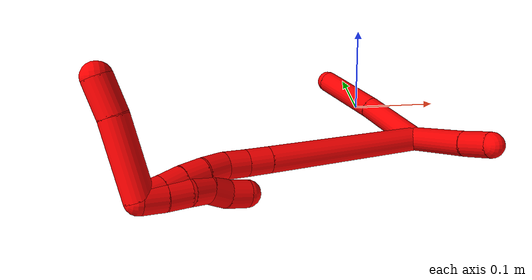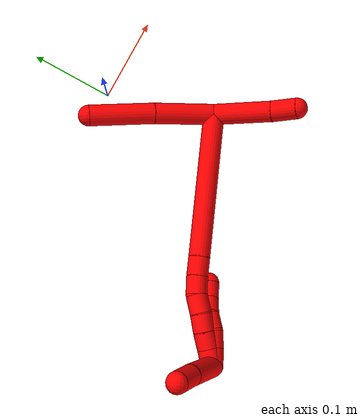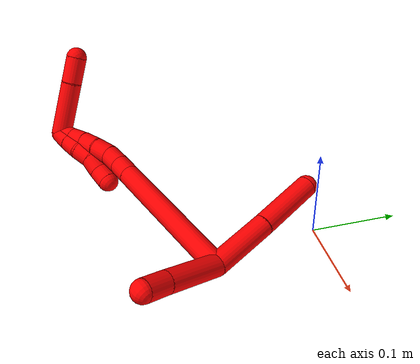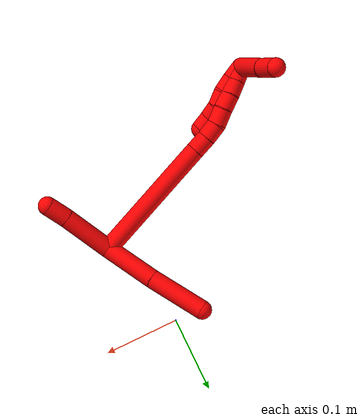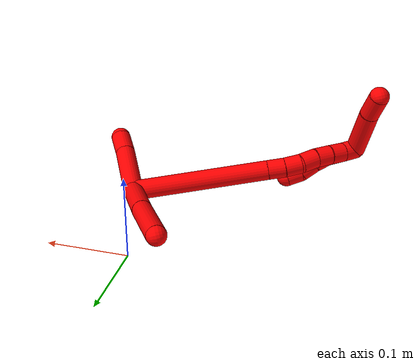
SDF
<sdf version="1.7">
 <world name="default">
  <model name="2">
   <static>0</static>
   <link name="2">
    <collision name="collision-cylinder-e_1_2_8">
     <pose>-0.002964 0.035927 0.003407 -1.47625 -0.081936 0.074541</pose>
     <geometry><cylinder><radius>0.0125</radius><length>0.072419</length></cylinder></geometry>
     <surface>
      <friction><ode><mu>1.16</mu><mu2>1.16</mu2><slip1>0</slip1><slip2>0</slip2></ode></friction>
      <contact><ode><kp>1e+06</kp><kd>1</kd><max_vel>0</max_vel><min_depth>0.001</min_depth></ode></contact>
     </surface>
    </collision>
    <visual name="visual-cylinder-e_1_2_8">
     <pose>-0.002964 0.035927 0.003407 -1.47625 -0.081936 0.074541</pose>
     <geometry><cylinder><radius>0.0125</radius><length>0.072419</length></cylinder></geometry>
     <material><ambient>1 0 0 1</ambient></material>
    </visual>
    <collision name="collision-cylinder-e_2_8_6">
     <pose>-0.010488 0.110012 0.012094 -1.43328 -0.117856 0.102698</pose>
     <geometry><cylinder><radius>0.0125</radius><length>0.077581</length></cylinder></geometry>
     <surface>
      <friction><ode><mu>1.16</mu><mu2>1.16</mu2><slip1>0</slip1><slip2>0</slip2></ode></friction>
      <contact><ode><kp>1e+06</kp><kd>1</kd><max_vel>0</max_vel><min_depth>0.001</min_depth></ode></contact>
     </surface>
    </collision>
    <visual name="visual-cylinder-e_2_8_6">
     <pose>-0.010488 0.110012 0.012094 -1.43328 -0.117856 0.102698</pose>
     <geometry><cylinder><radius>0.0125</radius><length>0.077581</length></cylinder></geometry>
     <material><ambient>1 0 0 1</ambient></material>
    </visual>
    <collision name="collision-cylinder-e_1_2_9">
     <pose>0.018253 -0.030108 0.000225 1.56334 0.545005 0.541151</pose>
     <geometry><cylinder><radius>0.0125</radius><length>0.070419</length></cylinder></geometry>
     <surface>
      <friction><ode><mu>1.16</mu><mu2>1.16</mu2><slip1>0</slip1><slip2>0</slip2></ode></friction>
      <contact><ode><kp>1e+06</kp><kd>1</kd><max_vel>0</max_vel><min_depth>0.001</min_depth></ode></contact>
     </surface>
    </collision>
    <visual name="visual-cylinder-e_1_2_9">
     <pose>0.018253 -0.030108 0.000225 1.56334 0.545005 0.541151</pose>
     <geometry><cylinder><radius>0.0125</radius><length>0.070419</length></cylinder></geometry>
     <material><ambient>1 0 0 1</ambient></material>
    </visual>
    <collision name="collision-cylinder-e_2_9_5">
     <pose>0.044632 -0.072556 -0.000222 1.62511 0.581573 0.612105</pose>
     <geometry><cylinder><radius>0.0125</radius><length>0.029581</length></cylinder></geometry>
     <surface>
      <friction><ode><mu>1.16</mu><mu2>1.16</mu2><slip1>0</slip1><slip2>0</slip2></ode></friction>
      <contact><ode><kp>1e+06</kp><kd>1</kd><max_vel>0</max_vel><min_depth>0.001</min_depth></ode></contact>
     </surface>
    </collision>
    <visual name="visual-cylinder-e_2_9_5">
     <pose>0.044632 -0.072556 -0.000222 1.62511 0.581573 0.612105</pose>
     <geometry><cylinder><radius>0.0125</radius><length>0.029581</length></cylinder></geometry>
     <material><ambient>1 0 0 1</ambient></material>
    </visual>
    <collision name="collision-cylinder-e_1_2_10">
     <pose>-0.007966 0.003082 0.08612 -0.035773 -0.092177 0.00165</pose>
     <geometry><cylinder><radius>0.0125</radius><length>0.173086</length></cylinder></geometry>
     <surface>
      <friction><ode><mu>1.16</mu><mu2>1.16</mu2><slip1>0</slip1><slip2>0</slip2></ode></friction>
      <contact><ode><kp>1e+06</kp><kd>1</kd><max_vel>0</max_vel><min_depth>0.001</min_depth></ode></contact>
     </surface>
    </collision>
    <visual name="visual-cylinder-e_1_2_10">
     <pose>-0.007966 0.003082 0.08612 -0.035773 -0.092177 0.00165</pose>
     <geometry><cylinder><radius>0.0125</radius><length>0.173086</length></cylinder></geometry>
     <material><ambient>1 0 0 1</ambient></material>
    </visual>
    <collision name="collision-cylinder-e_2_10_11">
     <pose>-0.016981 0.006641 0.183465 -0.042463 -0.093118 0.001979</pose>
     <geometry><cylinder><radius>0.0125</radius><length>0.022566</length></cylinder></geometry>
     <surface>
      <friction><ode><mu>1.16</mu><mu2>1.16</mu2><slip1>0</slip1><slip2>0</slip2></ode></friction>
      <contact><ode><kp>1e+06</kp><kd>1</kd><max_vel>0</max_vel><min_depth>0.001</min_depth></ode></contact>
     </surface>
    </collision>
    <visual name="visual-cylinder-e_2_10_11">
     <pose>-0.016981 0.006641 0.183465 -0.042463 -0.093118 0.001979</pose>
     <geometry><cylinder><radius>0.0125</radius><length>0.022566</length></cylinder></geometry>
     <material><ambient>1 0 0 1</ambient></material>
    </visual>
    <collision name="collision-cylinder-e_3_11_12">
     <pose>-0.018251 0.006941 0.205514 0.016369 -0.020416 -0.000167</pose>
     <geometry><cylinder><radius>0.0125</radius><length>0.021657</length></cylinder></geometry>
     <surface>
      <friction><ode><mu>1.16</mu><mu2>1.16</mu2><slip1>0</slip1><slip2>0</slip2></ode></friction>
      <contact><ode><kp>1e+06</kp><kd>1</kd><max_vel>0</max_vel><min_depth>0.001</min_depth></ode></contact>
     </surface>
    </collision>
    <visual name="visual-cylinder-e_3_11_12">
     <pose>-0.018251 0.006941 0.205514 0.016369 -0.020416 -0.000167</pose>
     <geometry><cylinder><radius>0.0125</radius><length>0.021657</length></cylinder></geometry>
     <material><ambient>1 0 0 1</ambient></material>
    </visual>
    <collision name="collision-cylinder-e_4_12_13">
     <pose>-0.018197 0.003791 0.226908 0.274165 0.025113 0.003464</pose>
     <geometry><cylinder><radius>0.0125</radius><length>0.021965</length></cylinder></geometry>
     <surface>
      <friction><ode><mu>1.16</mu><mu2>1.16</mu2><slip1>0</slip1><slip2>0</slip2></ode></friction>
      <contact><ode><kp>1e+06</kp><kd>1</kd><max_vel>0</max_vel><min_depth>0.001</min_depth></ode></contact>
     </surface>
    </collision>
    <visual name="visual-cylinder-e_4_12_13">
     <pose>-0.018197 0.003791 0.226908 0.274165 0.025113 0.003464</pose>
     <geometry><cylinder><radius>0.0125</radius><length>0.021965</length></cylinder></geometry>
     <material><ambient>1 0 0 1</ambient></material>
    </visual>
    <collision name="collision-cylinder-e_5_13_14">
     <pose>-0.018961 -0.001754 0.247442 0.252615 -0.100709 -0.012799</pose>
     <geometry><cylinder><radius>0.0125</radius><length>0.020689</length></cylinder></geometry>
     <surface>
      <friction><ode><mu>1.16</mu><mu2>1.16</mu2><slip1>0</slip1><slip2>0</slip2></ode></friction>
      <contact><ode><kp>1e+06</kp><kd>1</kd><max_vel>0</max_vel><min_depth>0.001</min_depth></ode></contact>
     </surface>
    </collision>
    <visual name="visual-cylinder-e_5_13_14">
     <pose>-0.018961 -0.001754 0.247442 0.252615 -0.100709 -0.012799</pose>
     <geometry><cylinder><radius>0.0125</radius><length>0.020689</length></cylinder></geometry>
     <material><ambient>1 0 0 1</ambient></material>
    </visual>
    <collision name="collision-cylinder-e_6_14_15">
     <pose>-0.02141 -0.007569 0.266764 0.333672 -0.141369 -0.023845</pose>
     <geometry><cylinder><radius>0.0125</radius><length>0.020005</length></cylinder></geometry>
     <surface>
      <friction><ode><mu>1.16</mu><mu2>1.16</mu2><slip1>0</slip1><slip2>0</slip2></ode></friction>
      <contact><ode><kp>1e+06</kp><kd>1</kd><max_vel>0</max_vel><min_depth>0.001</min_depth></ode></contact>
     </surface>
    </collision>
    <visual name="visual-cylinder-e_6_14_15">
     <pose>-0.02141 -0.007569 0.266764 0.333672 -0.141369 -0.023845</pose>
     <geometry><cylinder><radius>0.0125</radius><length>0.020005</length></cylinder></geometry>
     <material><ambient>1 0 0 1</ambient></material>
    </visual>
    <collision name="collision-cylinder-e_7_15_1">
     <pose>-0.023637 -0.013953 0.285596 0.320034 -0.081705 -0.013194</pose>
     <geometry><cylinder><radius>0.0125</radius><length>0.020032</length></cylinder></geometry>
     <surface>
      <friction><ode><mu>1.16</mu><mu2>1.16</mu2><slip1>0</slip1><slip2>0</slip2></ode></friction>
      <contact><ode><kp>1e+06</kp><kd>1</kd><max_vel>0</max_vel><min_depth>0.001</min_depth></ode></contact>
     </surface>
    </collision>
    <visual name="visual-cylinder-e_7_15_1">
     <pose>-0.023637 -0.013953 0.285596 0.320034 -0.081705 -0.013194</pose>
     <geometry><cylinder><radius>0.0125</radius><length>0.020032</length></cylinder></geometry>
     <material><ambient>1 0 0 1</ambient></material>
    </visual>
    <collision name="collision-cylinder-e_1_1_16">
     <pose>-0.024546 -0.016996 0.285073 -3.1318 -0.009174 1.50541</pose>
     <geometry><cylinder><radius>0.0125</radius><length>0.02</length></cylinder></geometry>
     <surface>
      <friction><ode><mu>1.16</mu><mu2>1.16</mu2><slip1>0</slip1><slip2>0</slip2></ode></friction>
      <contact><ode><kp>1e+06</kp><kd>1</kd><max_vel>0</max_vel><min_depth>0.001</min_depth></ode></contact>
     </surface>
    </collision>
    <visual name="visual-cylinder-e_1_1_16">
     <pose>-0.024546 -0.016996 0.285073 -3.1318 -0.009174 1.50541</pose>
     <geometry><cylinder><radius>0.0125</radius><length>0.02</length></cylinder></geometry>
     <material><ambient>1 0 0 1</ambient></material>
    </visual>
    <collision name="collision-cylinder-e_2_16_17">
     <pose>-0.024404 -0.016116 0.265107 -3.06332 0.023437 -0.581584</pose>
     <geometry><cylinder><radius>0.0125</radius><length>0.02</length></cylinder></geometry>
     <surface>
      <friction><ode><mu>1.16</mu><mu2>1.16</mu2><slip1>0</slip1><slip2>0</slip2></ode></friction>
      <contact><ode><kp>1e+06</kp><kd>1</kd><max_vel>0</max_vel><min_depth>0.001</min_depth></ode></contact>
     </surface>
    </collision>
    <visual name="visual-cylinder-e_2_16_17">
     <pose>-0.024404 -0.016116 0.265107 -3.06332 0.023437 -0.581584</pose>
     <geometry><cylinder><radius>0.0125</radius><length>0.02</length></cylinder></geometry>
     <material><ambient>1 0 0 1</ambient></material>
    </visual>
    <collision name="collision-cylinder-e_3_17_18">
     <pose>-0.025801 -0.013082 0.245535 -2.91129 -0.163908 1.23501</pose>
     <geometry><cylinder><radius>0.0125</radius><length>0.02</length></cylinder></geometry>
     <surface>
      <friction><ode><mu>1.16</mu><mu2>1.16</mu2><slip1>0</slip1><slip2>0</slip2></ode></friction>
      <contact><ode><kp>1e+06</kp><kd>1</kd><max_vel>0</max_vel><min_depth>0.001</min_depth></ode></contact>
     </surface>
    </collision>
    <visual name="visual-cylinder-e_3_17_18">
     <pose>-0.025801 -0.013082 0.245535 -2.91129 -0.163908 1.23501</pose>
     <geometry><cylinder><radius>0.0125</radius><length>0.02</length></cylinder></geometry>
     <material><ambient>1 0 0 1</ambient></material>
    </visual>
    <collision name="collision-cylinder-e_4_18_19">
     <pose>-0.031142 -0.011334 0.226656 3.08726 -0.379963 -2.86086</pose>
     <geometry><cylinder><radius>0.0125</radius><length>0.02</length></cylinder></geometry>
     <surface>
      <friction><ode><mu>1.16</mu><mu2>1.16</mu2><slip1>0</slip1><slip2>0</slip2></ode></friction>
      <contact><ode><kp>1e+06</kp><kd>1</kd><max_vel>0</max_vel><min_depth>0.001</min_depth></ode></contact>
     </surface>
    </collision>
    <visual name="visual-cylinder-e_4_18_19">
     <pose>-0.031142 -0.011334 0.226656 3.08726 -0.379963 -2.86086</pose>
     <geometry><cylinder><radius>0.0125</radius><length>0.02</length></cylinder></geometry>
     <material><ambient>1 0 0 1</ambient></material>
    </visual>
    <collision name="collision-cylinder-e_5_19_4">
     <pose>-0.035787 -0.012191 0.207433 3.1062 -0.093823 -2.42053</pose>
     <geometry><cylinder><radius>0.0125</radius><length>0.02</length></cylinder></geometry>
     <surface>
      <friction><ode><mu>1.16</mu><mu2>1.16</mu2><slip1>0</slip1><slip2>0</slip2></ode></friction>
      <contact><ode><kp>1e+06</kp><kd>1</kd><max_vel>0</max_vel><min_depth>0.001</min_depth></ode></contact>
     </surface>
    </collision>
    <visual name="visual-cylinder-e_5_19_4">
     <pose>-0.035787 -0.012191 0.207433 3.1062 -0.093823 -2.42053</pose>
     <geometry><cylinder><radius>0.0125</radius><length>0.02</length></cylinder></geometry>
     <material><ambient>1 0 0 1</ambient></material>
    </visual>
    <collision name="collision-cylinder-e_1_1_20">
     <pose>0.001366 0.002905 0.30343 -1.17495 0.872462 -0.602006</pose>
     <geometry><cylinder><radius>0.0125</radius><length>0.067425</length></cylinder></geometry>
     <surface>
      <friction><ode><mu>1.16</mu><mu2>1.16</mu2><slip1>0</slip1><slip2>0</slip2></ode></friction>
      <contact><ode><kp>1e+06</kp><kd>1</kd><max_vel>0</max_vel><min_depth>0.001</min_depth></ode></contact>
     </surface>
    </collision>
    <visual name="visual-cylinder-e_1_1_20">
     <pose>0.001366 0.002905 0.30343 -1.17495 0.872462 -0.602006</pose>
     <geometry><cylinder><radius>0.0125</radius><length>0.067425</length></cylinder></geometry>
     <material><ambient>1 0 0 1</ambient></material>
    </visual>
    <collision name="collision-cylinder-e_2_20_3">
     <pose>0.038761 0.033099 0.317023 -1.09635 0.790313 -0.49875</pose>
     <geometry><cylinder><radius>0.0125</radius><length>0.032575</length></cylinder></geometry>
     <surface>
      <friction><ode><mu>1.16</mu><mu2>1.16</mu2><slip1>0</slip1><slip2>0</slip2></ode></friction>
      <contact><ode><kp>1e+06</kp><kd>1</kd><max_vel>0</max_vel><min_depth>0.001</min_depth></ode></contact>
     </surface>
    </collision>
    <visual name="visual-cylinder-e_2_20_3">
     <pose>0.038761 0.033099 0.317023 -1.09635 0.790313 -0.49875</pose>
     <geometry><cylinder><radius>0.0125</radius><length>0.032575</length></cylinder></geometry>
     <material><ambient>1 0 0 1</ambient></material>
    </visual>
    <collision name="collision-sphere-3">
     <pose>0.050334 0.043293 0.322258 0 -0 0</pose>
     <geometry><sphere><radius>0.0125</radius></sphere></geometry>
     <surface>
      <friction><ode><mu>1.16</mu><mu2>1.16</mu2><slip1>0</slip1><slip2>0</slip2></ode></friction>
      <contact><ode><kp>1e+06</kp><kd>1</kd><max_vel>0</max_vel><min_depth>0.001</min_depth></ode></contact>
     </surface>
    </collision>
    <visual name="visual-sphere-3">
     <pose>0.050334 0.043293 0.322258 0 -0 0</pose>
     <geometry><sphere><radius>0.0125</radius></sphere></geometry>
     <material><ambient>1 0 0 1</ambient></material>
    </visual>
    <collision name="collision-sphere-20">
     <pose>0.027187 0.022905 0.311787 0 -0 0</pose>
     <geometry><sphere><radius>0.0125</radius></sphere></geometry>
     <surface>
      <friction><ode><mu>1.16</mu><mu2>1.16</mu2><slip1>0</slip1><slip2>0</slip2></ode></friction>
      <contact><ode><kp>1e+06</kp><kd>1</kd><max_vel>0</max_vel><min_depth>0.001</min_depth></ode></contact>
     </surface>
    </collision>
    <visual name="visual-sphere-20">
     <pose>0.027187 0.022905 0.311787 0 -0 0</pose>
     <geometry><sphere><radius>0.0125</radius></sphere></geometry>
     <material><ambient>1 0 0 1</ambient></material>
    </visual>
    <collision name="collision-sphere-4">
     <pose>-0.036724 -0.012543 0.197484 0 -0 0</pose>
     <geometry><sphere><radius>0.0125</radius></sphere></geometry>
     <surface>
      <friction><ode><mu>1.16</mu><mu2>1.16</mu2><slip1>0</slip1><slip2>0</slip2></ode></friction>
      <contact><ode><kp>1e+06</kp><kd>1</kd><max_vel>0</max_vel><min_depth>0.001</min_depth></ode></contact>
     </surface>
    </collision>
    <visual name="visual-sphere-4">
     <pose>-0.036724 -0.012543 0.197484 0 -0 0</pose>
     <geometry><sphere><radius>0.0125</radius></sphere></geometry>
     <material><ambient>1 0 0 1</ambient></material>
    </visual>
    <collision name="collision-sphere-10">
     <pose>-0.015932 0.006164 0.172241 0 -0 0</pose>
     <geometry><sphere><radius>0.0125</radius></sphere></geometry>
     <surface>
      <friction><ode><mu>1.16</mu><mu2>1.16</mu2><slip1>0</slip1><slip2>0</slip2></ode></friction>
      <contact><ode><kp>1e+06</kp><kd>1</kd><max_vel>0</max_vel><min_depth>0.001</min_depth></ode></contact>
     </surface>
    </collision>
    <visual name="visual-sphere-10">
     <pose>-0.015932 0.006164 0.172241 0 -0 0</pose>
     <geometry><sphere><radius>0.0125</radius></sphere></geometry>
     <material><ambient>1 0 0 1</ambient></material>
    </visual>
    <collision name="collision-sphere-5">
     <pose>0.052757 -0.084897 -0.000893 0 -0 0</pose>
     <geometry><sphere><radius>0.0125</radius></sphere></geometry>
     <surface>
      <friction><ode><mu>1.16</mu><mu2>1.16</mu2><slip1>0</slip1><slip2>0</slip2></ode></friction>
      <contact><ode><kp>1e+06</kp><kd>1</kd><max_vel>0</max_vel><min_depth>0.001</min_depth></ode></contact>
     </surface>
    </collision>
    <visual name="visual-sphere-5">
     <pose>0.052757 -0.084897 -0.000893 0 -0 0</pose>
     <geometry><sphere><radius>0.0125</radius></sphere></geometry>
     <material><ambient>1 0 0 1</ambient></material>
    </visual>
    <collision name="collision-sphere-6">
     <pose>-0.015049 0.148169 0.017375 0 -0 0</pose>
     <geometry><sphere><radius>0.0125</radius></sphere></geometry>
     <surface>
      <friction><ode><mu>1.16</mu><mu2>1.16</mu2><slip1>0</slip1><slip2>0</slip2></ode></friction>
      <contact><ode><kp>1e+06</kp><kd>1</kd><max_vel>0</max_vel><min_depth>0.001</min_depth></ode></contact>
     </surface>
    </collision>
    <visual name="visual-sphere-6">
     <pose>-0.015049 0.148169 0.017375 0 -0 0</pose>
     <geometry><sphere><radius>0.0125</radius></sphere></geometry>
     <material><ambient>1 0 0 1</ambient></material>
    </visual>
    <collision name="collision-sphere-9">
     <pose>0.036507 -0.060215 0.000449 0 -0 0</pose>
     <geometry><sphere><radius>0.0125</radius></sphere></geometry>
     <surface>
      <friction><ode><mu>1.16</mu><mu2>1.16</mu2><slip1>0</slip1><slip2>0</slip2></ode></friction>
      <contact><ode><kp>1e+06</kp><kd>1</kd><max_vel>0</max_vel><min_depth>0.001</min_depth></ode></contact>
     </surface>
    </collision>
    <visual name="visual-sphere-9">
     <pose>0.036507 -0.060215 0.000449 0 -0 0</pose>
     <geometry><sphere><radius>0.0125</radius></sphere></geometry>
     <material><ambient>1 0 0 1</ambient></material>
    </visual>
    <collision name="collision-sphere-2">
     <geometry><sphere><radius>0.0125</radius></sphere></geometry>
     <surface>
      <friction><ode><mu>1.16</mu><mu2>1.16</mu2><slip1>0</slip1><slip2>0</slip2></ode></friction>
      <contact><ode><kp>1e+06</kp><kd>1</kd><max_vel>0</max_vel><min_depth>0.001</min_depth></ode></contact>
     </surface>
    </collision>
    <visual name="visual-sphere-2">
     <geometry><sphere><radius>0.0125</radius></sphere></geometry>
     <material><ambient>1 0 0 1</ambient></material>
    </visual>
    <collision name="collision-sphere-19">
     <pose>-0.03485 -0.011839 0.217383 0 -0 0</pose>
     <geometry><sphere><radius>0.0125</radius></sphere></geometry>
     <surface>
      <friction><ode><mu>1.16</mu><mu2>1.16</mu2><slip1>0</slip1><slip2>0</slip2></ode></friction>
      <contact><ode><kp>1e+06</kp><kd>1</kd><max_vel>0</max_vel><min_depth>0.001</min_depth></ode></contact>
     </surface>
    </collision>
    <visual name="visual-sphere-19">
     <pose>-0.03485 -0.011839 0.217383 0 -0 0</pose>
     <geometry><sphere><radius>0.0125</radius></sphere></geometry>
     <material><ambient>1 0 0 1</ambient></material>
    </visual>
    <collision name="collision-sphere-8">
     <pose>-0.005927 0.071854 0.006814 0 -0 0</pose>
     <geometry><sphere><radius>0.0125</radius></sphere></geometry>
     <surface>
      <friction><ode><mu>1.16</mu><mu2>1.16</mu2><slip1>0</slip1><slip2>0</slip2></ode></friction>
      <contact><ode><kp>1e+06</kp><kd>1</kd><max_vel>0</max_vel><min_depth>0.001</min_depth></ode></contact>
     </surface>
    </collision>
    <visual name="visual-sphere-8">
     <pose>-0.005927 0.071854 0.006814 0 -0 0</pose>
     <geometry><sphere><radius>0.0125</radius></sphere></geometry>
     <material><ambient>1 0 0 1</ambient></material>
    </visual>
    <collision name="collision-sphere-11">
     <pose>-0.01803 0.007118 0.194689 0 -0 0</pose>
     <geometry><sphere><radius>0.0125</radius></sphere></geometry>
     <surface>
      <friction><ode><mu>1.16</mu><mu2>1.16</mu2><slip1>0</slip1><slip2>0</slip2></ode></friction>
      <contact><ode><kp>1e+06</kp><kd>1</kd><max_vel>0</max_vel><min_depth>0.001</min_depth></ode></contact>
     </surface>
    </collision>
    <visual name="visual-sphere-11">
     <pose>-0.01803 0.007118 0.194689 0 -0 0</pose>
     <geometry><sphere><radius>0.0125</radius></sphere></geometry>
     <material><ambient>1 0 0 1</ambient></material>
    </visual>
    <collision name="collision-sphere-12">
     <pose>-0.018472 0.006764 0.216339 0 -0 0</pose>
     <geometry><sphere><radius>0.0125</radius></sphere></geometry>
     <surface>
      <friction><ode><mu>1.16</mu><mu2>1.16</mu2><slip1>0</slip1><slip2>0</slip2></ode></friction>
      <contact><ode><kp>1e+06</kp><kd>1</kd><max_vel>0</max_vel><min_depth>0.001</min_depth></ode></contact>
     </surface>
    </collision>
    <visual name="visual-sphere-12">
     <pose>-0.018472 0.006764 0.216339 0 -0 0</pose>
     <geometry><sphere><radius>0.0125</radius></sphere></geometry>
     <material><ambient>1 0 0 1</ambient></material>
    </visual>
    <collision name="collision-sphere-13">
     <pose>-0.017921 0.000819 0.237477 0 -0 0</pose>
     <geometry><sphere><radius>0.0125</radius></sphere></geometry>
     <surface>
      <friction><ode><mu>1.16</mu><mu2>1.16</mu2><slip1>0</slip1><slip2>0</slip2></ode></friction>
      <contact><ode><kp>1e+06</kp><kd>1</kd><max_vel>0</max_vel><min_depth>0.001</min_depth></ode></contact>
     </surface>
    </collision>
    <visual name="visual-sphere-13">
     <pose>-0.017921 0.000819 0.237477 0 -0 0</pose>
     <geometry><sphere><radius>0.0125</radius></sphere></geometry>
     <material><ambient>1 0 0 1</ambient></material>
    </visual>
    <collision name="collision-sphere-14">
     <pose>-0.020001 -0.004326 0.257407 0 -0 0</pose>
     <geometry><sphere><radius>0.0125</radius></sphere></geometry>
     <surface>
      <friction><ode><mu>1.16</mu><mu2>1.16</mu2><slip1>0</slip1><slip2>0</slip2></ode></friction>
      <contact><ode><kp>1e+06</kp><kd>1</kd><max_vel>0</max_vel><min_depth>0.001</min_depth></ode></contact>
     </surface>
    </collision>
    <visual name="visual-sphere-14">
     <pose>-0.020001 -0.004326 0.257407 0 -0 0</pose>
     <geometry><sphere><radius>0.0125</radius></sphere></geometry>
     <material><ambient>1 0 0 1</ambient></material>
    </visual>
    <collision name="collision-sphere-15">
     <pose>-0.02282 -0.010813 0.276121 0 -0 0</pose>
     <geometry><sphere><radius>0.0125</radius></sphere></geometry>
     <surface>
      <friction><ode><mu>1.16</mu><mu2>1.16</mu2><slip1>0</slip1><slip2>0</slip2></ode></friction>
      <contact><ode><kp>1e+06</kp><kd>1</kd><max_vel>0</max_vel><min_depth>0.001</min_depth></ode></contact>
     </surface>
    </collision>
    <visual name="visual-sphere-15">
     <pose>-0.02282 -0.010813 0.276121 0 -0 0</pose>
     <geometry><sphere><radius>0.0125</radius></sphere></geometry>
     <material><ambient>1 0 0 1</ambient></material>
    </visual>
    <collision name="collision-sphere-1">
     <pose>-0.024454 -0.017094 0.295072 0 -0 0</pose>
     <geometry><sphere><radius>0.0125</radius></sphere></geometry>
     <surface>
      <friction><ode><mu>1.16</mu><mu2>1.16</mu2><slip1>0</slip1><slip2>0</slip2></ode></friction>
      <contact><ode><kp>1e+06</kp><kd>1</kd><max_vel>0</max_vel><min_depth>0.001</min_depth></ode></contact>
     </surface>
    </collision>
    <visual name="visual-sphere-1">
     <pose>-0.024454 -0.017094 0.295072 0 -0 0</pose>
     <geometry><sphere><radius>0.0125</radius></sphere></geometry>
     <material><ambient>1 0 0 1</ambient></material>
    </visual>
    <collision name="collision-sphere-18">
     <pose>-0.027433 -0.01083 0.235929 0 -0 0</pose>
     <geometry><sphere><radius>0.0125</radius></sphere></geometry>
     <surface>
      <friction><ode><mu>1.16</mu><mu2>1.16</mu2><slip1>0</slip1><slip2>0</slip2></ode></friction>
      <contact><ode><kp>1e+06</kp><kd>1</kd><max_vel>0</max_vel><min_depth>0.001</min_depth></ode></contact>
     </surface>
    </collision>
    <visual name="visual-sphere-18">
     <pose>-0.027433 -0.01083 0.235929 0 -0 0</pose>
     <geometry><sphere><radius>0.0125</radius></sphere></geometry>
     <material><ambient>1 0 0 1</ambient></material>
    </visual>
    <collision name="collision-sphere-16">
     <pose>-0.024638 -0.016898 0.275074 0 -0 0</pose>
     <geometry><sphere><radius>0.0125</radius></sphere></geometry>
     <surface>
      <friction><ode><mu>1.16</mu><mu2>1.16</mu2><slip1>0</slip1><slip2>0</slip2></ode></friction>
      <contact><ode><kp>1e+06</kp><kd>1</kd><max_vel>0</max_vel><min_depth>0.001</min_depth></ode></contact>
     </surface>
    </collision>
    <visual name="visual-sphere-16">
     <pose>-0.024638 -0.016898 0.275074 0 -0 0</pose>
     <geometry><sphere><radius>0.0125</radius></sphere></geometry>
     <material><ambient>1 0 0 1</ambient></material>
    </visual>
    <collision name="collision-sphere-17">
     <pose>-0.024169 -0.015334 0.25514 0 -0 0</pose>
     <geometry><sphere><radius>0.0125</radius></sphere></geometry>
     <surface>
      <friction><ode><mu>1.16</mu><mu2>1.16</mu2><slip1>0</slip1><slip2>0</slip2></ode></friction>
      <contact><ode><kp>1e+06</kp><kd>1</kd><max_vel>0</max_vel><min_depth>0.001</min_depth></ode></contact>
     </surface>
    </collision>
    <visual name="visual-sphere-17">
     <pose>-0.024169 -0.015334 0.25514 0 -0 0</pose>
     <geometry><sphere><radius>0.0125</radius></sphere></geometry>
     <material><ambient>1 0 0 1</ambient></material>
    </visual>
    <inertial>
     <pose>-0.005003 0.009599 0.134979 0 -0 0</pose>
     <mass>0.75</mass>
     <inertia>
      <ixx>0.000583</ixx>
      <ixy>0</ixy>
      <ixz>0</ixz>
      <iyy>0.000512</iyy>
      <iyz>0</iyz>
      <izz>-5.3e-05</izz>
     </inertia>
    </inertial>
   </link>
   <pose>0.03933 -0.12404 0.012254 0.89393 -1.2653 -0.467418</pose>
  </model>
 </world>
</sdf>
